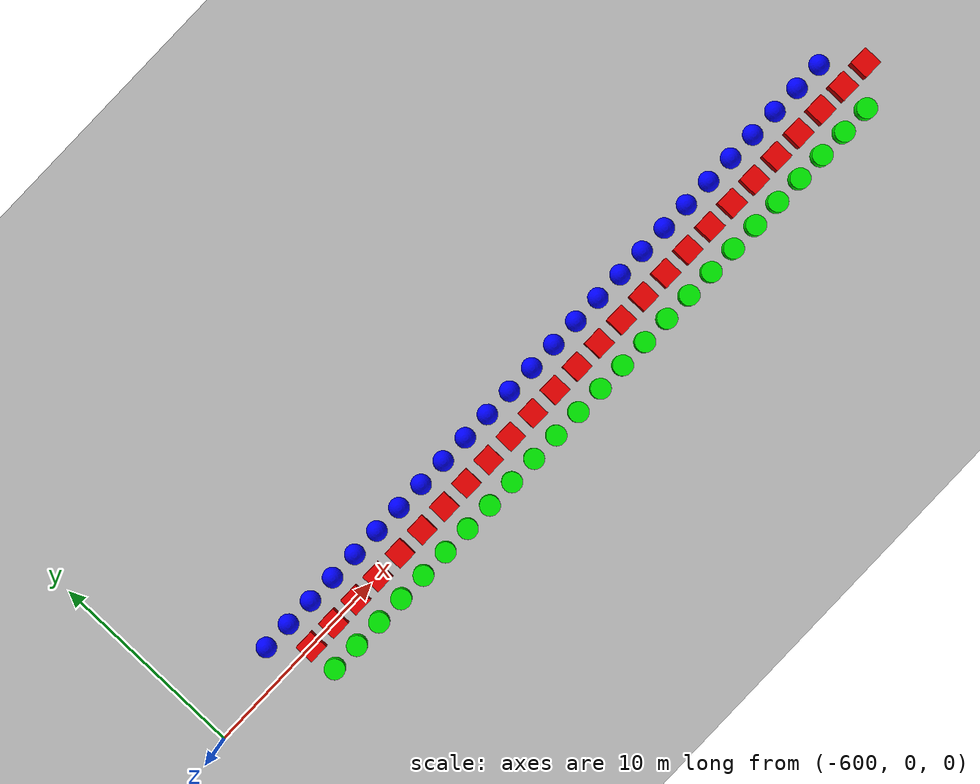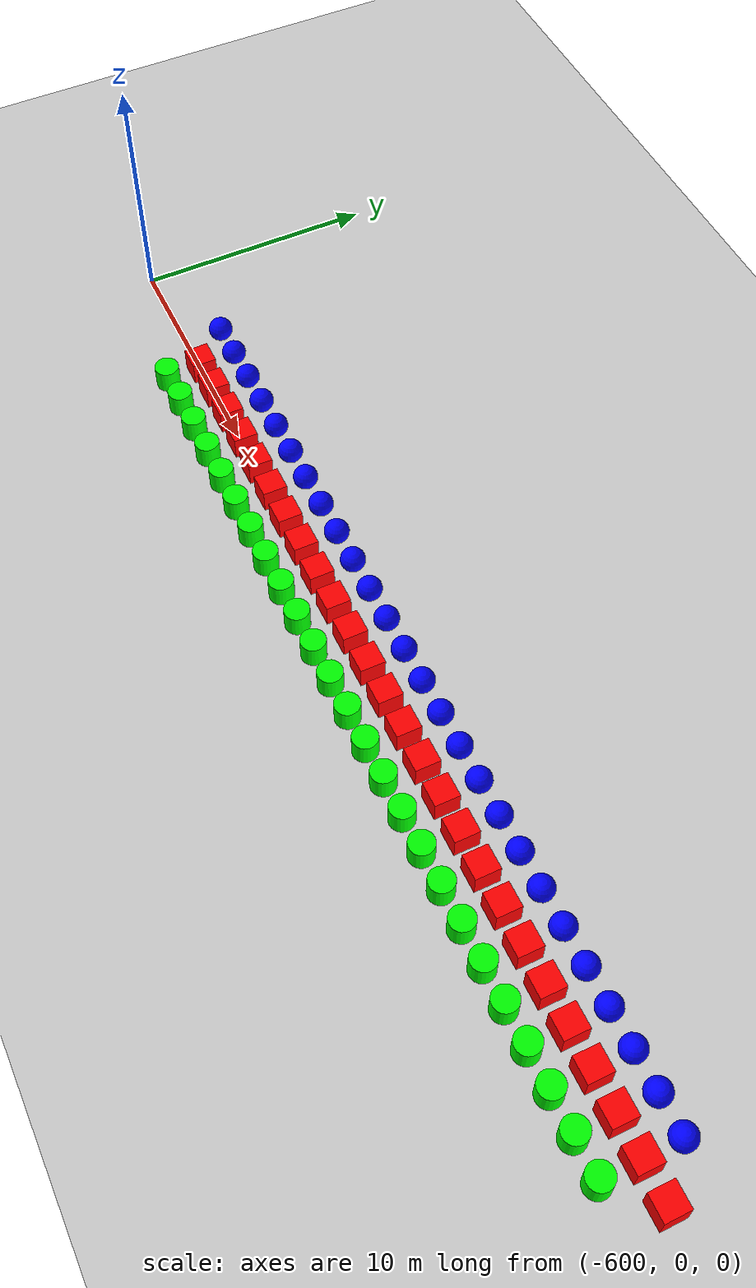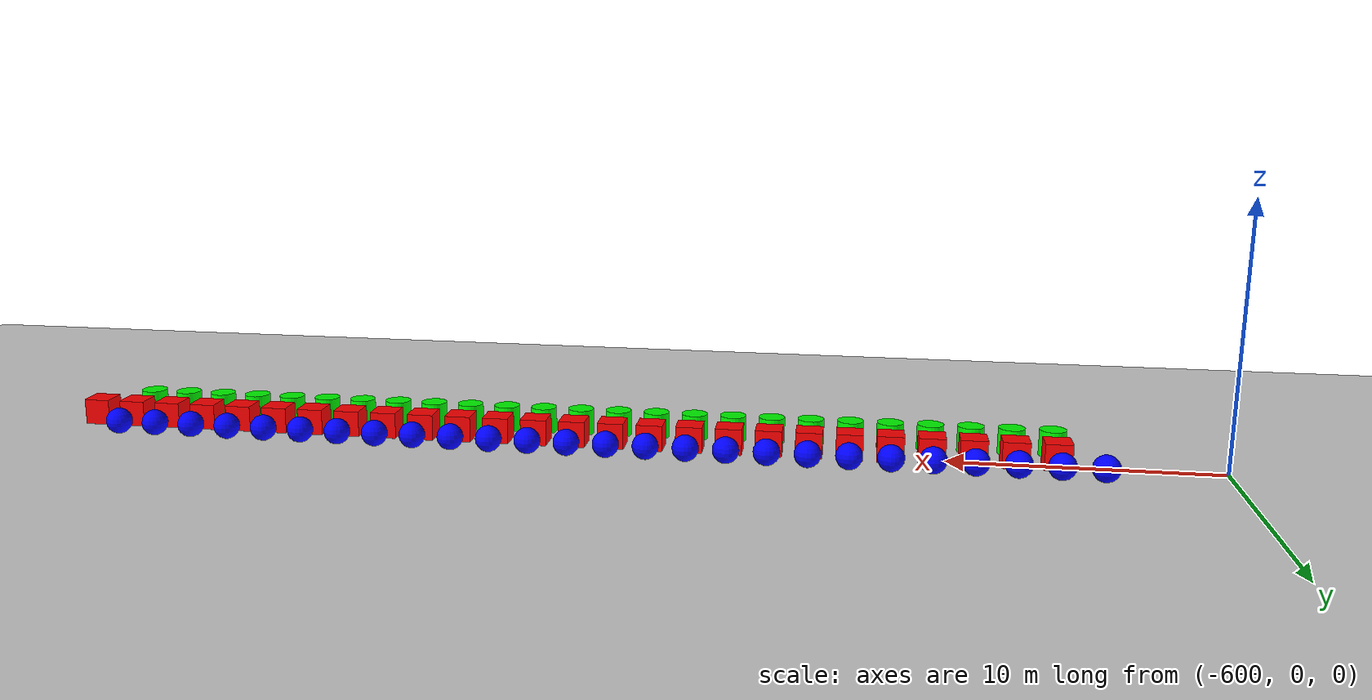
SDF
<sdf version="1.6">
 <world name="shapes">
  <model name="ground_plane">
   <static>true</static>
   <link name="link">
    <collision name="collision">
     <geometry><plane><normal>0 0 1</normal><size>100 100</size></plane></geometry>
    </collision>
    <visual name="visual">
     <geometry><plane><normal>0 0 1</normal><size>100 100</size></plane></geometry>
     <material>
      <ambient>0.8 0.8 0.8 1</ambient>
      <diffuse>0.8 0.8 0.8 1</diffuse>
      <specular>0.8 0.8 0.8 1</specular>
     </material>
    </visual>
   </link>
  </model>
  <model name="sphere_103">
   <static>false</static>
   <pose>-595.5 1.5 0.5 0 0 0</pose>
   <link name="sphere_link">
    <inertial>
     <inertia><ixx>3</ixx><ixy>0</ixy><ixz>0</ixz><iyy>3</iyy><iyz>0</iyz><izz>3</izz></inertia>
     <mass>3.0</mass>
    </inertial>
    <collision name="sphere_collision"><geometry><sphere><radius>0.5</radius></sphere></geometry></collision>
    <visual name="sphere_visual">
     <geometry><sphere><radius>0.5</radius></sphere></geometry>
     <material><ambient>0 0 1 1</ambient><diffuse>0 0 1 1</diffuse><specular>0 0 1 1</specular></material>
    </visual>
   </link>
  </model>
  <model name="box_104">
   <static>false</static>
   <pose>-594.0 0 0.5 0 0 0</pose>
   <link name="box_link">
    <inertial>
     <inertia><ixx>1</ixx><ixy>0</ixy><ixz>0</ixz><iyy>1</iyy><iyz>0</iyz><izz>1</izz></inertia>
     <mass>1.0</mass>
    </inertial>
    <collision name="box_collision"><geometry><box><size>1 1 1</size></box></geometry></collision>
    <visual name="box_visual">
     <geometry><box><size>1 1 1</size></box></geometry>
     <material><ambient>1 0 0 1</ambient><diffuse>1 0 0 1</diffuse><specular>1 0 0 1</specular></material>
    </visual>
   </link>
  </model>
  <model name="cylinder_104">
   <static>false</static>
   <pose>-594.0 -1.5 0.5 0 0 0</pose>
   <link name="cylinder_link">
    <inertial>
     <inertia><ixx>2</ixx><ixy>0</ixy><ixz>0</ixz><iyy>2</iyy><iyz>0</iyz><izz>2</izz></inertia>
     <mass>2.0</mass>
    </inertial>
    <collision name="cylinder_collision">
     <geometry><cylinder><radius>0.5</radius><length>1.0</length></cylinder></geometry>
    </collision>
    <visual name="cylinder_visual">
     <geometry><cylinder><radius>0.5</radius><length>1.0</length></cylinder></geometry>
     <material><ambient>0 1 0 1</ambient><diffuse>0 1 0 1</diffuse><specular>0 1 0 1</specular></material>
    </visual>
   </link>
  </model>
  <model name="sphere_104">
   <static>false</static>
   <pose>-594.0 1.5 0.5 0 0 0</pose>
   <link name="sphere_link">
    <inertial>
     <inertia><ixx>3</ixx><ixy>0</ixy><ixz>0</ixz><iyy>3</iyy><iyz>0</iyz><izz>3</izz></inertia>
     <mass>3.0</mass>
    </inertial>
    <collision name="sphere_collision"><geometry><sphere><radius>0.5</radius></sphere></geometry></collision>
    <visual name="sphere_visual">
     <geometry><sphere><radius>0.5</radius></sphere></geometry>
     <material><ambient>0 0 1 1</ambient><diffuse>0 0 1 1</diffuse><specular>0 0 1 1</specular></material>
    </visual>
   </link>
  </model>
  <model name="box_105">
   <static>false</static>
   <pose>-592.5 0 0.5 0 0 0</pose>
   <link name="box_link">
    <inertial>
     <inertia><ixx>1</ixx><ixy>0</ixy><ixz>0</ixz><iyy>1</iyy><iyz>0</iyz><izz>1</izz></inertia>
     <mass>1.0</mass>
    </inertial>
    <collision name="box_collision"><geometry><box><size>1 1 1</size></box></geometry></collision>
    <visual name="box_visual">
     <geometry><box><size>1 1 1</size></box></geometry>
     <material><ambient>1 0 0 1</ambient><diffuse>1 0 0 1</diffuse><specular>1 0 0 1</specular></material>
    </visual>
   </link>
  </model>
  <model name="cylinder_105">
   <static>false</static>
   <pose>-592.5 -1.5 0.5 0 0 0</pose>
   <link name="cylinder_link">
    <inertial>
     <inertia><ixx>2</ixx><ixy>0</ixy><ixz>0</ixz><iyy>2</iyy><iyz>0</iyz><izz>2</izz></inertia>
     <mass>2.0</mass>
    </inertial>
    <collision name="cylinder_collision">
     <geometry><cylinder><radius>0.5</radius><length>1.0</length></cylinder></geometry>
    </collision>
    <visual name="cylinder_visual">
     <geometry><cylinder><radius>0.5</radius><length>1.0</length></cylinder></geometry>
     <material><ambient>0 1 0 1</ambient><diffuse>0 1 0 1</diffuse><specular>0 1 0 1</specular></material>
    </visual>
   </link>
  </model>
  <model name="sphere_105">
   <static>false</static>
   <pose>-592.5 1.5 0.5 0 0 0</pose>
   <link name="sphere_link">
    <inertial>
     <inertia><ixx>3</ixx><ixy>0</ixy><ixz>0</ixz><iyy>3</iyy><iyz>0</iyz><izz>3</izz></inertia>
     <mass>3.0</mass>
    </inertial>
    <collision name="sphere_collision"><geometry><sphere><radius>0.5</radius></sphere></geometry></collision>
    <visual name="sphere_visual">
     <geometry><sphere><radius>0.5</radius></sphere></geometry>
     <material><ambient>0 0 1 1</ambient><diffuse>0 0 1 1</diffuse><specular>0 0 1 1</specular></material>
    </visual>
   </link>
  </model>
  <model name="box_106">
   <static>false</static>
   <pose>-591.0 0 0.5 0 0 0</pose>
   <link name="box_link">
    <inertial>
     <inertia><ixx>1</ixx><ixy>0</ixy><ixz>0</ixz><iyy>1</iyy><iyz>0</iyz><izz>1</izz></inertia>
     <mass>1.0</mass>
    </inertial>
    <collision name="box_collision"><geometry><box><size>1 1 1</size></box></geometry></collision>
    <visual name="box_visual">
     <geometry><box><size>1 1 1</size></box></geometry>
     <material><ambient>1 0 0 1</ambient><diffuse>1 0 0 1</diffuse><specular>1 0 0 1</specular></material>
    </visual>
   </link>
  </model>
  <model name="cylinder_106">
   <static>false</static>
   <pose>-591.0 -1.5 0.5 0 0 0</pose>
   <link name="cylinder_link">
    <inertial>
     <inertia><ixx>2</ixx><ixy>0</ixy><ixz>0</ixz><iyy>2</iyy><iyz>0</iyz><izz>2</izz></inertia>
     <mass>2.0</mass>
    </inertial>
    <collision name="cylinder_collision">
     <geometry><cylinder><radius>0.5</radius><length>1.0</length></cylinder></geometry>
    </collision>
    <visual name="cylinder_visual">
     <geometry><cylinder><radius>0.5</radius><length>1.0</length></cylinder></geometry>
     <material><ambient>0 1 0 1</ambient><diffuse>0 1 0 1</diffuse><specular>0 1 0 1</specular></material>
    </visual>
   </link>
  </model>
  <model name="sphere_106">
   <static>false</static>
   <pose>-591.0 1.5 0.5 0 0 0</pose>
   <link name="sphere_link">
    <inertial>
     <inertia><ixx>3</ixx><ixy>0</ixy><ixz>0</ixz><iyy>3</iyy><iyz>0</iyz><izz>3</izz></inertia>
     <mass>3.0</mass>
    </inertial>
    <collision name="sphere_collision"><geometry><sphere><radius>0.5</radius></sphere></geometry></collision>
    <visual name="sphere_visual">
     <geometry><sphere><radius>0.5</radius></sphere></geometry>
     <material><ambient>0 0 1 1</ambient><diffuse>0 0 1 1</diffuse><specular>0 0 1 1</specular></material>
    </visual>
   </link>
  </model>
  <model name="box_107">
   <static>false</static>
   <pose>-589.5 0 0.5 0 0 0</pose>
   <link name="box_link">
    <inertial>
     <inertia><ixx>1</ixx><ixy>0</ixy><ixz>0</ixz><iyy>1</iyy><iyz>0</iyz><izz>1</izz></inertia>
     <mass>1.0</mass>
    </inertial>
    <collision name="box_collision"><geometry><box><size>1 1 1</size></box></geometry></collision>
    <visual name="box_visual">
     <geometry><box><size>1 1 1</size></box></geometry>
     <material><ambient>1 0 0 1</ambient><diffuse>1 0 0 1</diffuse><specular>1 0 0 1</specular></material>
    </visual>
   </link>
  </model>
  <model name="cylinder_107">
   <static>false</static>
   <pose>-589.5 -1.5 0.5 0 0 0</pose>
   <link name="cylinder_link">
    <inertial>
     <inertia><ixx>2</ixx><ixy>0</ixy><ixz>0</ixz><iyy>2</iyy><iyz>0</iyz><izz>2</izz></inertia>
     <mass>2.0</mass>
    </inertial>
    <collision name="cylinder_collision">
     <geometry><cylinder><radius>0.5</radius><length>1.0</length></cylinder></geometry>
    </collision>
    <visual name="cylinder_visual">
     <geometry><cylinder><radius>0.5</radius><length>1.0</length></cylinder></geometry>
     <material><ambient>0 1 0 1</ambient><diffuse>0 1 0 1</diffuse><specular>0 1 0 1</specular></material>
    </visual>
   </link>
  </model>
  <model name="sphere_107">
   <static>false</static>
   <pose>-589.5 1.5 0.5 0 0 0</pose>
   <link name="sphere_link">
    <inertial>
     <inertia><ixx>3</ixx><ixy>0</ixy><ixz>0</ixz><iyy>3</iyy><iyz>0</iyz><izz>3</izz></inertia>
     <mass>3.0</mass>
    </inertial>
    <collision name="sphere_collision"><geometry><sphere><radius>0.5</radius></sphere></geometry></collision>
    <visual name="sphere_visual">
     <geometry><sphere><radius>0.5</radius></sphere></geometry>
     <material><ambient>0 0 1 1</ambient><diffuse>0 0 1 1</diffuse><specular>0 0 1 1</specular></material>
    </visual>
   </link>
  </model>
  <model name="box_108">
   <static>false</static>
   <pose>-588.0 0 0.5 0 0 0</pose>
   <link name="box_link">
    <inertial>
     <inertia><ixx>1</ixx><ixy>0</ixy><ixz>0</ixz><iyy>1</iyy><iyz>0</iyz><izz>1</izz></inertia>
     <mass>1.0</mass>
    </inertial>
    <collision name="box_collision"><geometry><box><size>1 1 1</size></box></geometry></collision>
    <visual name="box_visual">
     <geometry><box><size>1 1 1</size></box></geometry>
     <material><ambient>1 0 0 1</ambient><diffuse>1 0 0 1</diffuse><specular>1 0 0 1</specular></material>
    </visual>
   </link>
  </model>
  <model name="cylinder_108">
   <static>false</static>
   <pose>-588.0 -1.5 0.5 0 0 0</pose>
   <link name="cylinder_link">
    <inertial>
     <inertia><ixx>2</ixx><ixy>0</ixy><ixz>0</ixz><iyy>2</iyy><iyz>0</iyz><izz>2</izz></inertia>
     <mass>2.0</mass>
    </inertial>
    <collision name="cylinder_collision">
     <geometry><cylinder><radius>0.5</radius><length>1.0</length></cylinder></geometry>
    </collision>
    <visual name="cylinder_visual">
     <geometry><cylinder><radius>0.5</radius><length>1.0</length></cylinder></geometry>
     <material><ambient>0 1 0 1</ambient><diffuse>0 1 0 1</diffuse><specular>0 1 0 1</specular></material>
    </visual>
   </link>
  </model>
  <model name="sphere_108">
   <static>false</static>
   <pose>-588.0 1.5 0.5 0 0 0</pose>
   <link name="sphere_link">
    <inertial>
     <inertia><ixx>3</ixx><ixy>0</ixy><ixz>0</ixz><iyy>3</iyy><iyz>0</iyz><izz>3</izz></inertia>
     <mass>3.0</mass>
    </inertial>
    <collision name="sphere_collision"><geometry><sphere><radius>0.5</radius></sphere></geometry></collision>
    <visual name="sphere_visual">
     <geometry><sphere><radius>0.5</radius></sphere></geometry>
     <material><ambient>0 0 1 1</ambient><diffuse>0 0 1 1</diffuse><specular>0 0 1 1</specular></material>
    </visual>
   </link>
  </model>
  <model name="box_109">
   <static>false</static>
   <pose>-586.5 0 0.5 0 0 0</pose>
   <link name="box_link">
    <inertial>
     <inertia><ixx>1</ixx><ixy>0</ixy><ixz>0</ixz><iyy>1</iyy><iyz>0</iyz><izz>1</izz></inertia>
     <mass>1.0</mass>
    </inertial>
    <collision name="box_collision"><geometry><box><size>1 1 1</size></box></geometry></collision>
    <visual name="box_visual">
     <geometry><box><size>1 1 1</size></box></geometry>
     <material><ambient>1 0 0 1</ambient><diffuse>1 0 0 1</diffuse><specular>1 0 0 1</specular></material>
    </visual>
   </link>
  </model>
  <model name="cylinder_109">
   <static>false</static>
   <pose>-586.5 -1.5 0.5 0 0 0</pose>
   <link name="cylinder_link">
    <inertial>
     <inertia><ixx>2</ixx><ixy>0</ixy><ixz>0</ixz><iyy>2</iyy><iyz>0</iyz><izz>2</izz></inertia>
     <mass>2.0</mass>
    </inertial>
    <collision name="cylinder_collision">
     <geometry><cylinder><radius>0.5</radius><length>1.0</length></cylinder></geometry>
    </collision>
    <visual name="cylinder_visual">
     <geometry><cylinder><radius>0.5</radius><length>1.0</length></cylinder></geometry>
     <material><ambient>0 1 0 1</ambient><diffuse>0 1 0 1</diffuse><specular>0 1 0 1</specular></material>
    </visual>
   </link>
  </model>
  <model name="sphere_109">
   <static>false</static>
   <pose>-586.5 1.5 0.5 0 0 0</pose>
   <link name="sphere_link">
    <inertial>
     <inertia><ixx>3</ixx><ixy>0</ixy><ixz>0</ixz><iyy>3</iyy><iyz>0</iyz><izz>3</izz></inertia>
     <mass>3.0</mass>
    </inertial>
    <collision name="sphere_collision"><geometry><sphere><radius>0.5</radius></sphere></geometry></collision>
    <visual name="sphere_visual">
     <geometry><sphere><radius>0.5</radius></sphere></geometry>
     <material><ambient>0 0 1 1</ambient><diffuse>0 0 1 1</diffuse><specular>0 0 1 1</specular></material>
    </visual>
   </link>
  </model>
  <model name="box_110">
   <static>false</static>
   <pose>-585.0 0 0.5 0 0 0</pose>
   <link name="box_link">
    <inertial>
     <inertia><ixx>1</ixx><ixy>0</ixy><ixz>0</ixz><iyy>1</iyy><iyz>0</iyz><izz>1</izz></inertia>
     <mass>1.0</mass>
    </inertial>
    <collision name="box_collision"><geometry><box><size>1 1 1</size></box></geometry></collision>
    <visual name="box_visual">
     <geometry><box><size>1 1 1</size></box></geometry>
     <material><ambient>1 0 0 1</ambient><diffuse>1 0 0 1</diffuse><specular>1 0 0 1</specular></material>
    </visual>
   </link>
  </model>
  <model name="cylinder_110">
   <static>false</static>
   <pose>-585.0 -1.5 0.5 0 0 0</pose>
   <link name="cylinder_link">
    <inertial>
     <inertia><ixx>2</ixx><ixy>0</ixy><ixz>0</ixz><iyy>2</iyy><iyz>0</iyz><izz>2</izz></inertia>
     <mass>2.0</mass>
    </inertial>
    <collision name="cylinder_collision">
     <geometry><cylinder><radius>0.5</radius><length>1.0</length></cylinder></geometry>
    </collision>
    <visual name="cylinder_visual">
     <geometry><cylinder><radius>0.5</radius><length>1.0</length></cylinder></geometry>
     <material><ambient>0 1 0 1</ambient><diffuse>0 1 0 1</diffuse><specular>0 1 0 1</specular></material>
    </visual>
   </link>
  </model>
  <model name="sphere_110">
   <static>false</static>
   <pose>-585.0 1.5 0.5 0 0 0</pose>
   <link name="sphere_link">
    <inertial>
     <inertia><ixx>3</ixx><ixy>0</ixy><ixz>0</ixz><iyy>3</iyy><iyz>0</iyz><izz>3</izz></inertia>
     <mass>3.0</mass>
    </inertial>
    <collision name="sphere_collision"><geometry><sphere><radius>0.5</radius></sphere></geometry></collision>
    <visual name="sphere_visual">
     <geometry><sphere><radius>0.5</radius></sphere></geometry>
     <material><ambient>0 0 1 1</ambient><diffuse>0 0 1 1</diffuse><specular>0 0 1 1</specular></material>
    </visual>
   </link>
  </model>
  <model name="box_111">
   <static>false</static>
   <pose>-583.5 0 0.5 0 0 0</pose>
   <link name="box_link">
    <inertial>
     <inertia><ixx>1</ixx><ixy>0</ixy><ixz>0</ixz><iyy>1</iyy><iyz>0</iyz><izz>1</izz></inertia>
     <mass>1.0</mass>
    </inertial>
    <collision name="box_collision"><geometry><box><size>1 1 1</size></box></geometry></collision>
    <visual name="box_visual">
     <geometry><box><size>1 1 1</size></box></geometry>
     <material><ambient>1 0 0 1</ambient><diffuse>1 0 0 1</diffuse><specular>1 0 0 1</specular></material>
    </visual>
   </link>
  </model>
  <model name="cylinder_111">
   <static>false</static>
   <pose>-583.5 -1.5 0.5 0 0 0</pose>
   <link name="cylinder_link">
    <inertial>
     <inertia><ixx>2</ixx><ixy>0</ixy><ixz>0</ixz><iyy>2</iyy><iyz>0</iyz><izz>2</izz></inertia>
     <mass>2.0</mass>
    </inertial>
    <collision name="cylinder_collision">
     <geometry><cylinder><radius>0.5</radius><length>1.0</length></cylinder></geometry>
    </collision>
    <visual name="cylinder_visual">
     <geometry><cylinder><radius>0.5</radius><length>1.0</length></cylinder></geometry>
     <material><ambient>0 1 0 1</ambient><diffuse>0 1 0 1</diffuse><specular>0 1 0 1</specular></material>
    </visual>
   </link>
  </model>
  <model name="sphere_111">
   <static>false</static>
   <pose>-583.5 1.5 0.5 0 0 0</pose>
   <link name="sphere_link">
    <inertial>
     <inertia><ixx>3</ixx><ixy>0</ixy><ixz>0</ixz><iyy>3</iyy><iyz>0</iyz><izz>3</izz></inertia>
     <mass>3.0</mass>
    </inertial>
    <collision name="sphere_collision"><geometry><sphere><radius>0.5</radius></sphere></geometry></collision>
    <visual name="sphere_visual">
     <geometry><sphere><radius>0.5</radius></sphere></geometry>
     <material><ambient>0 0 1 1</ambient><diffuse>0 0 1 1</diffuse><specular>0 0 1 1</specular></material>
    </visual>
   </link>
  </model>
  <model name="box_112">
   <static>false</static>
   <pose>-582.0 0 0.5 0 0 0</pose>
   <link name="box_link">
    <inertial>
     <inertia><ixx>1</ixx><ixy>0</ixy><ixz>0</ixz><iyy>1</iyy><iyz>0</iyz><izz>1</izz></inertia>
     <mass>1.0</mass>
    </inertial>
    <collision name="box_collision"><geometry><box><size>1 1 1</size></box></geometry></collision>
    <visual name="box_visual">
     <geometry><box><size>1 1 1</size></box></geometry>
     <material><ambient>1 0 0 1</ambient><diffuse>1 0 0 1</diffuse><specular>1 0 0 1</specular></material>
    </visual>
   </link>
  </model>
  <model name="cylinder_112">
   <static>false</static>
   <pose>-582.0 -1.5 0.5 0 0 0</pose>
   <link name="cylinder_link">
    <inertial>
     <inertia><ixx>2</ixx><ixy>0</ixy><ixz>0</ixz><iyy>2</iyy><iyz>0</iyz><izz>2</izz></inertia>
     <mass>2.0</mass>
    </inertial>
    <collision name="cylinder_collision">
     <geometry><cylinder><radius>0.5</radius><length>1.0</length></cylinder></geometry>
    </collision>
    <visual name="cylinder_visual">
     <geometry><cylinder><radius>0.5</radius><length>1.0</length></cylinder></geometry>
     <material><ambient>0 1 0 1</ambient><diffuse>0 1 0 1</diffuse><specular>0 1 0 1</specular></material>
    </visual>
   </link>
  </model>
  <model name="sphere_112">
   <static>false</static>
   <pose>-582.0 1.5 0.5 0 0 0</pose>
   <link name="sphere_link">
    <inertial>
     <inertia><ixx>3</ixx><ixy>0</ixy><ixz>0</ixz><iyy>3</iyy><iyz>0</iyz><izz>3</izz></inertia>
     <mass>3.0</mass>
    </inertial>
    <collision name="sphere_collision"><geometry><sphere><radius>0.5</radius></sphere></geometry></collision>
    <visual name="sphere_visual">
     <geometry><sphere><radius>0.5</radius></sphere></geometry>
     <material><ambient>0 0 1 1</ambient><diffuse>0 0 1 1</diffuse><specular>0 0 1 1</specular></material>
    </visual>
   </link>
  </model>
  <model name="box_113">
   <static>false</static>
   <pose>-580.5 0 0.5 0 0 0</pose>
   <link name="box_link">
    <inertial>
     <inertia><ixx>1</ixx><ixy>0</ixy><ixz>0</ixz><iyy>1</iyy><iyz>0</iyz><izz>1</izz></inertia>
     <mass>1.0</mass>
    </inertial>
    <collision name="box_collision"><geometry><box><size>1 1 1</size></box></geometry></collision>
    <visual name="box_visual">
     <geometry><box><size>1 1 1</size></box></geometry>
     <material><ambient>1 0 0 1</ambient><diffuse>1 0 0 1</diffuse><specular>1 0 0 1</specular></material>
    </visual>
   </link>
  </model>
  <model name="cylinder_113">
   <static>false</static>
   <pose>-580.5 -1.5 0.5 0 0 0</pose>
   <link name="cylinder_link">
    <inertial>
     <inertia><ixx>2</ixx><ixy>0</ixy><ixz>0</ixz><iyy>2</iyy><iyz>0</iyz><izz>2</izz></inertia>
     <mass>2.0</mass>
    </inertial>
    <collision name="cylinder_collision">
     <geometry><cylinder><radius>0.5</radius><length>1.0</length></cylinder></geometry>
    </collision>
    <visual name="cylinder_visual">
     <geometry><cylinder><radius>0.5</radius><length>1.0</length></cylinder></geometry>
     <material><ambient>0 1 0 1</ambient><diffuse>0 1 0 1</diffuse><specular>0 1 0 1</specular></material>
    </visual>
   </link>
  </model>
  <model name="sphere_113">
   <static>false</static>
   <pose>-580.5 1.5 0.5 0 0 0</pose>
   <link name="sphere_link">
    <inertial>
     <inertia><ixx>3</ixx><ixy>0</ixy><ixz>0</ixz><iyy>3</iyy><iyz>0</iyz><izz>3</izz></inertia>
     <mass>3.0</mass>
    </inertial>
    <collision name="sphere_collision"><geometry><sphere><radius>0.5</radius></sphere></geometry></collision>
    <visual name="sphere_visual">
     <geometry><sphere><radius>0.5</radius></sphere></geometry>
     <material><ambient>0 0 1 1</ambient><diffuse>0 0 1 1</diffuse><specular>0 0 1 1</specular></material>
    </visual>
   </link>
  </model>
  <model name="box_114">
   <static>false</static>
   <pose>-579.0 0 0.5 0 0 0</pose>
   <link name="box_link">
    <inertial>
     <inertia><ixx>1</ixx><ixy>0</ixy><ixz>0</ixz><iyy>1</iyy><iyz>0</iyz><izz>1</izz></inertia>
     <mass>1.0</mass>
    </inertial>
    <collision name="box_collision"><geometry><box><size>1 1 1</size></box></geometry></collision>
    <visual name="box_visual">
     <geometry><box><size>1 1 1</size></box></geometry>
     <material><ambient>1 0 0 1</ambient><diffuse>1 0 0 1</diffuse><specular>1 0 0 1</specular></material>
    </visual>
   </link>
  </model>
  <model name="cylinder_114">
   <static>false</static>
   <pose>-579.0 -1.5 0.5 0 0 0</pose>
   <link name="cylinder_link">
    <inertial>
     <inertia><ixx>2</ixx><ixy>0</ixy><ixz>0</ixz><iyy>2</iyy><iyz>0</iyz><izz>2</izz></inertia>
     <mass>2.0</mass>
    </inertial>
    <collision name="cylinder_collision">
     <geometry><cylinder><radius>0.5</radius><length>1.0</length></cylinder></geometry>
    </collision>
    <visual name="cylinder_visual">
     <geometry><cylinder><radius>0.5</radius><length>1.0</length></cylinder></geometry>
     <material><ambient>0 1 0 1</ambient><diffuse>0 1 0 1</diffuse><specular>0 1 0 1</specular></material>
    </visual>
   </link>
  </model>
  <model name="sphere_114">
   <static>false</static>
   <pose>-579.0 1.5 0.5 0 0 0</pose>
   <link name="sphere_link">
    <inertial>
     <inertia><ixx>3</ixx><ixy>0</ixy><ixz>0</ixz><iyy>3</iyy><iyz>0</iyz><izz>3</izz></inertia>
     <mass>3.0</mass>
    </inertial>
    <collision name="sphere_collision"><geometry><sphere><radius>0.5</radius></sphere></geometry></collision>
    <visual name="sphere_visual">
     <geometry><sphere><radius>0.5</radius></sphere></geometry>
     <material><ambient>0 0 1 1</ambient><diffuse>0 0 1 1</diffuse><specular>0 0 1 1</specular></material>
    </visual>
   </link>
  </model>
  <model name="box_115">
   <static>false</static>
   <pose>-577.5 0 0.5 0 0 0</pose>
   <link name="box_link">
    <inertial>
     <inertia><ixx>1</ixx><ixy>0</ixy><ixz>0</ixz><iyy>1</iyy><iyz>0</iyz><izz>1</izz></inertia>
     <mass>1.0</mass>
    </inertial>
    <collision name="box_collision"><geometry><box><size>1 1 1</size></box></geometry></collision>
    <visual name="box_visual">
     <geometry><box><size>1 1 1</size></box></geometry>
     <material><ambient>1 0 0 1</ambient><diffuse>1 0 0 1</diffuse><specular>1 0 0 1</specular></material>
    </visual>
   </link>
  </model>
  <model name="cylinder_115">
   <static>false</static>
   <pose>-577.5 -1.5 0.5 0 0 0</pose>
   <link name="cylinder_link">
    <inertial>
     <inertia><ixx>2</ixx><ixy>0</ixy><ixz>0</ixz><iyy>2</iyy><iyz>0</iyz><izz>2</izz></inertia>
     <mass>2.0</mass>
    </inertial>
    <collision name="cylinder_collision">
     <geometry><cylinder><radius>0.5</radius><length>1.0</length></cylinder></geometry>
    </collision>
    <visual name="cylinder_visual">
     <geometry><cylinder><radius>0.5</radius><length>1.0</length></cylinder></geometry>
     <material><ambient>0 1 0 1</ambient><diffuse>0 1 0 1</diffuse><specular>0 1 0 1</specular></material>
    </visual>
   </link>
  </model>
  <model name="sphere_115">
   <static>false</static>
   <pose>-577.5 1.5 0.5 0 0 0</pose>
   <link name="sphere_link">
    <inertial>
     <inertia><ixx>3</ixx><ixy>0</ixy><ixz>0</ixz><iyy>3</iyy><iyz>0</iyz><izz>3</izz></inertia>
     <mass>3.0</mass>
    </inertial>
    <collision name="sphere_collision"><geometry><sphere><radius>0.5</radius></sphere></geometry></collision>
    <visual name="sphere_visual">
     <geometry><sphere><radius>0.5</radius></sphere></geometry>
     <material><ambient>0 0 1 1</ambient><diffuse>0 0 1 1</diffuse><specular>0 0 1 1</specular></material>
    </visual>
   </link>
  </model>
  <model name="box_116">
   <static>false</static>
   <pose>-576.0 0 0.5 0 0 0</pose>
   <link name="box_link">
    <inertial>
     <inertia><ixx>1</ixx><ixy>0</ixy><ixz>0</ixz><iyy>1</iyy><iyz>0</iyz><izz>1</izz></inertia>
     <mass>1.0</mass>
    </inertial>
    <collision name="box_collision"><geometry><box><size>1 1 1</size></box></geometry></collision>
    <visual name="box_visual">
     <geometry><box><size>1 1 1</size></box></geometry>
     <material><ambient>1 0 0 1</ambient><diffuse>1 0 0 1</diffuse><specular>1 0 0 1</specular></material>
    </visual>
   </link>
  </model>
  <model name="cylinder_116">
   <static>false</static>
   <pose>-576.0 -1.5 0.5 0 0 0</pose>
   <link name="cylinder_link">
    <inertial>
     <inertia><ixx>2</ixx><ixy>0</ixy><ixz>0</ixz><iyy>2</iyy><iyz>0</iyz><izz>2</izz></inertia>
     <mass>2.0</mass>
    </inertial>
    <collision name="cylinder_collision">
     <geometry><cylinder><radius>0.5</radius><length>1.0</length></cylinder></geometry>
    </collision>
    <visual name="cylinder_visual">
     <geometry><cylinder><radius>0.5</radius><length>1.0</length></cylinder></geometry>
     <material><ambient>0 1 0 1</ambient><diffuse>0 1 0 1</diffuse><specular>0 1 0 1</specular></material>
    </visual>
   </link>
  </model>
  <model name="sphere_116">
   <static>false</static>
   <pose>-576.0 1.5 0.5 0 0 0</pose>
   <link name="sphere_link">
    <inertial>
     <inertia><ixx>3</ixx><ixy>0</ixy><ixz>0</ixz><iyy>3</iyy><iyz>0</iyz><izz>3</izz></inertia>
     <mass>3.0</mass>
    </inertial>
    <collision name="sphere_collision"><geometry><sphere><radius>0.5</radius></sphere></geometry></collision>
    <visual name="sphere_visual">
     <geometry><sphere><radius>0.5</radius></sphere></geometry>
     <material><ambient>0 0 1 1</ambient><diffuse>0 0 1 1</diffuse><specular>0 0 1 1</specular></material>
    </visual>
   </link>
  </model>
  <model name="box_117">
   <static>false</static>
   <pose>-574.5 0 0.5 0 0 0</pose>
   <link name="box_link">
    <inertial>
     <inertia><ixx>1</ixx><ixy>0</ixy><ixz>0</ixz><iyy>1</iyy><iyz>0</iyz><izz>1</izz></inertia>
     <mass>1.0</mass>
    </inertial>
    <collision name="box_collision"><geometry><box><size>1 1 1</size></box></geometry></collision>
    <visual name="box_visual">
     <geometry><box><size>1 1 1</size></box></geometry>
     <material><ambient>1 0 0 1</ambient><diffuse>1 0 0 1</diffuse><specular>1 0 0 1</specular></material>
    </visual>
   </link>
  </model>
  <model name="cylinder_117">
   <static>false</static>
   <pose>-574.5 -1.5 0.5 0 0 0</pose>
   <link name="cylinder_link">
    <inertial>
     <inertia><ixx>2</ixx><ixy>0</ixy><ixz>0</ixz><iyy>2</iyy><iyz>0</iyz><izz>2</izz></inertia>
     <mass>2.0</mass>
    </inertial>
    <collision name="cylinder_collision">
     <geometry><cylinder><radius>0.5</radius><length>1.0</length></cylinder></geometry>
    </collision>
    <visual name="cylinder_visual">
     <geometry><cylinder><radius>0.5</radius><length>1.0</length></cylinder></geometry>
     <material><ambient>0 1 0 1</ambient><diffuse>0 1 0 1</diffuse><specular>0 1 0 1</specular></material>
    </visual>
   </link>
  </model>
  <model name="sphere_117">
   <static>false</static>
   <pose>-574.5 1.5 0.5 0 0 0</pose>
   <link name="sphere_link">
    <inertial>
     <inertia><ixx>3</ixx><ixy>0</ixy><ixz>0</ixz><iyy>3</iyy><iyz>0</iyz><izz>3</izz></inertia>
     <mass>3.0</mass>
    </inertial>
    <collision name="sphere_collision"><geometry><sphere><radius>0.5</radius></sphere></geometry></collision>
    <visual name="sphere_visual">
     <geometry><sphere><radius>0.5</radius></sphere></geometry>
     <material><ambient>0 0 1 1</ambient><diffuse>0 0 1 1</diffuse><specular>0 0 1 1</specular></material>
    </visual>
   </link>
  </model>
  <model name="box_118">
   <static>false</static>
   <pose>-573.0 0 0.5 0 0 0</pose>
   <link name="box_link">
    <inertial>
     <inertia><ixx>1</ixx><ixy>0</ixy><ixz>0</ixz><iyy>1</iyy><iyz>0</iyz><izz>1</izz></inertia>
     <mass>1.0</mass>
    </inertial>
    <collision name="box_collision"><geometry><box><size>1 1 1</size></box></geometry></collision>
    <visual name="box_visual">
     <geometry><box><size>1 1 1</size></box></geometry>
     <material><ambient>1 0 0 1</ambient><diffuse>1 0 0 1</diffuse><specular>1 0 0 1</specular></material>
    </visual>
   </link>
  </model>
  <model name="cylinder_118">
   <static>false</static>
   <pose>-573.0 -1.5 0.5 0 0 0</pose>
   <link name="cylinder_link">
    <inertial>
     <inertia><ixx>2</ixx><ixy>0</ixy><ixz>0</ixz><iyy>2</iyy><iyz>0</iyz><izz>2</izz></inertia>
     <mass>2.0</mass>
    </inertial>
    <collision name="cylinder_collision">
     <geometry><cylinder><radius>0.5</radius><length>1.0</length></cylinder></geometry>
    </collision>
    <visual name="cylinder_visual">
     <geometry><cylinder><radius>0.5</radius><length>1.0</length></cylinder></geometry>
     <material><ambient>0 1 0 1</ambient><diffuse>0 1 0 1</diffuse><specular>0 1 0 1</specular></material>
    </visual>
   </link>
  </model>
  <model name="sphere_118">
   <static>false</static>
   <pose>-573.0 1.5 0.5 0 0 0</pose>
   <link name="sphere_link">
    <inertial>
     <inertia><ixx>3</ixx><ixy>0</ixy><ixz>0</ixz><iyy>3</iyy><iyz>0</iyz><izz>3</izz></inertia>
     <mass>3.0</mass>
    </inertial>
    <collision name="sphere_collision"><geometry><sphere><radius>0.5</radius></sphere></geometry></collision>
    <visual name="sphere_visual">
     <geometry><sphere><radius>0.5</radius></sphere></geometry>
     <material><ambient>0 0 1 1</ambient><diffuse>0 0 1 1</diffuse><specular>0 0 1 1</specular></material>
    </visual>
   </link>
  </model>
  <model name="box_119">
   <static>false</static>
   <pose>-571.5 0 0.5 0 0 0</pose>
   <link name="box_link">
    <inertial>
     <inertia><ixx>1</ixx><ixy>0</ixy><ixz>0</ixz><iyy>1</iyy><iyz>0</iyz><izz>1</izz></inertia>
     <mass>1.0</mass>
    </inertial>
    <collision name="box_collision"><geometry><box><size>1 1 1</size></box></geometry></collision>
    <visual name="box_visual">
     <geometry><box><size>1 1 1</size></box></geometry>
     <material><ambient>1 0 0 1</ambient><diffuse>1 0 0 1</diffuse><specular>1 0 0 1</specular></material>
    </visual>
   </link>
  </model>
  <model name="cylinder_119">
   <static>false</static>
   <pose>-571.5 -1.5 0.5 0 0 0</pose>
   <link name="cylinder_link">
    <inertial>
     <inertia><ixx>2</ixx><ixy>0</ixy><ixz>0</ixz><iyy>2</iyy><iyz>0</iyz><izz>2</izz></inertia>
     <mass>2.0</mass>
    </inertial>
    <collision name="cylinder_collision">
     <geometry><cylinder><radius>0.5</radius><length>1.0</length></cylinder></geometry>
    </collision>
    <visual name="cylinder_visual">
     <geometry><cylinder><radius>0.5</radius><length>1.0</length></cylinder></geometry>
     <material><ambient>0 1 0 1</ambient><diffuse>0 1 0 1</diffuse><specular>0 1 0 1</specular></material>
    </visual>
   </link>
  </model>
  <model name="sphere_119">
   <static>false</static>
   <pose>-571.5 1.5 0.5 0 0 0</pose>
   <link name="sphere_link">
    <inertial>
     <inertia><ixx>3</ixx><ixy>0</ixy><ixz>0</ixz><iyy>3</iyy><iyz>0</iyz><izz>3</izz></inertia>
     <mass>3.0</mass>
    </inertial>
    <collision name="sphere_collision"><geometry><sphere><radius>0.5</radius></sphere></geometry></collision>
    <visual name="sphere_visual">
     <geometry><sphere><radius>0.5</radius></sphere></geometry>
     <material><ambient>0 0 1 1</ambient><diffuse>0 0 1 1</diffuse><specular>0 0 1 1</specular></material>
    </visual>
   </link>
  </model>
  <model name="box_120">
   <static>false</static>
   <pose>-570.0 0 0.5 0 0 0</pose>
   <link name="box_link">
    <inertial>
     <inertia><ixx>1</ixx><ixy>0</ixy><ixz>0</ixz><iyy>1</iyy><iyz>0</iyz><izz>1</izz></inertia>
     <mass>1.0</mass>
    </inertial>
    <collision name="box_collision"><geometry><box><size>1 1 1</size></box></geometry></collision>
    <visual name="box_visual">
     <geometry><box><size>1 1 1</size></box></geometry>
     <material><ambient>1 0 0 1</ambient><diffuse>1 0 0 1</diffuse><specular>1 0 0 1</specular></material>
    </visual>
   </link>
  </model>
  <model name="cylinder_120">
   <static>false</static>
   <pose>-570.0 -1.5 0.5 0 0 0</pose>
   <link name="cylinder_link">
    <inertial>
     <inertia><ixx>2</ixx><ixy>0</ixy><ixz>0</ixz><iyy>2</iyy><iyz>0</iyz><izz>2</izz></inertia>
     <mass>2.0</mass>
    </inertial>
    <collision name="cylinder_collision">
     <geometry><cylinder><radius>0.5</radius><length>1.0</length></cylinder></geometry>
    </collision>
    <visual name="cylinder_visual">
     <geometry><cylinder><radius>0.5</radius><length>1.0</length></cylinder></geometry>
     <material><ambient>0 1 0 1</ambient><diffuse>0 1 0 1</diffuse><specular>0 1 0 1</specular></material>
    </visual>
   </link>
  </model>
  <model name="sphere_120">
   <static>false</static>
   <pose>-570.0 1.5 0.5 0 0 0</pose>
   <link name="sphere_link">
    <inertial>
     <inertia><ixx>3</ixx><ixy>0</ixy><ixz>0</ixz><iyy>3</iyy><iyz>0</iyz><izz>3</izz></inertia>
     <mass>3.0</mass>
    </inertial>
    <collision name="sphere_collision"><geometry><sphere><radius>0.5</radius></sphere></geometry></collision>
    <visual name="sphere_visual">
     <geometry><sphere><radius>0.5</radius></sphere></geometry>
     <material><ambient>0 0 1 1</ambient><diffuse>0 0 1 1</diffuse><specular>0 0 1 1</specular></material>
    </visual>
   </link>
  </model>
  <model name="box_121">
   <static>false</static>
   <pose>-568.5 0 0.5 0 0 0</pose>
   <link name="box_link">
    <inertial>
     <inertia><ixx>1</ixx><ixy>0</ixy><ixz>0</ixz><iyy>1</iyy><iyz>0</iyz><izz>1</izz></inertia>
     <mass>1.0</mass>
    </inertial>
    <collision name="box_collision"><geometry><box><size>1 1 1</size></box></geometry></collision>
    <visual name="box_visual">
     <geometry><box><size>1 1 1</size></box></geometry>
     <material><ambient>1 0 0 1</ambient><diffuse>1 0 0 1</diffuse><specular>1 0 0 1</specular></material>
    </visual>
   </link>
  </model>
  <model name="cylinder_121">
   <static>false</static>
   <pose>-568.5 -1.5 0.5 0 0 0</pose>
   <link name="cylinder_link">
    <inertial>
     <inertia><ixx>2</ixx><ixy>0</ixy><ixz>0</ixz><iyy>2</iyy><iyz>0</iyz><izz>2</izz></inertia>
     <mass>2.0</mass>
    </inertial>
    <collision name="cylinder_collision">
     <geometry><cylinder><radius>0.5</radius><length>1.0</length></cylinder></geometry>
    </collision>
    <visual name="cylinder_visual">
     <geometry><cylinder><radius>0.5</radius><length>1.0</length></cylinder></geometry>
     <material><ambient>0 1 0 1</ambient><diffuse>0 1 0 1</diffuse><specular>0 1 0 1</specular></material>
    </visual>
   </link>
  </model>
  <model name="sphere_121">
   <static>false</static>
   <pose>-568.5 1.5 0.5 0 0 0</pose>
   <link name="sphere_link">
    <inertial>
     <inertia><ixx>3</ixx><ixy>0</ixy><ixz>0</ixz><iyy>3</iyy><iyz>0</iyz><izz>3</izz></inertia>
     <mass>3.0</mass>
    </inertial>
    <collision name="sphere_collision"><geometry><sphere><radius>0.5</radius></sphere></geometry></collision>
    <visual name="sphere_visual">
     <geometry><sphere><radius>0.5</radius></sphere></geometry>
     <material><ambient>0 0 1 1</ambient><diffuse>0 0 1 1</diffuse><specular>0 0 1 1</specular></material>
    </visual>
   </link>
  </model>
  <model name="box_122">
   <static>false</static>
   <pose>-567.0 0 0.5 0 0 0</pose>
   <link name="box_link">
    <inertial>
     <inertia><ixx>1</ixx><ixy>0</ixy><ixz>0</ixz><iyy>1</iyy><iyz>0</iyz><izz>1</izz></inertia>
     <mass>1.0</mass>
    </inertial>
    <collision name="box_collision"><geometry><box><size>1 1 1</size></box></geometry></collision>
    <visual name="box_visual">
     <geometry><box><size>1 1 1</size></box></geometry>
     <material><ambient>1 0 0 1</ambient><diffuse>1 0 0 1</diffuse><specular>1 0 0 1</specular></material>
    </visual>
   </link>
  </model>
  <model name="cylinder_122">
   <static>false</static>
   <pose>-567.0 -1.5 0.5 0 0 0</pose>
   <link name="cylinder_link">
    <inertial>
     <inertia><ixx>2</ixx><ixy>0</ixy><ixz>0</ixz><iyy>2</iyy><iyz>0</iyz><izz>2</izz></inertia>
     <mass>2.0</mass>
    </inertial>
    <collision name="cylinder_collision">
     <geometry><cylinder><radius>0.5</radius><length>1.0</length></cylinder></geometry>
    </collision>
    <visual name="cylinder_visual">
     <geometry><cylinder><radius>0.5</radius><length>1.0</length></cylinder></geometry>
     <material><ambient>0 1 0 1</ambient><diffuse>0 1 0 1</diffuse><specular>0 1 0 1</specular></material>
    </visual>
   </link>
  </model>
  <model name="sphere_122">
   <static>false</static>
   <pose>-567.0 1.5 0.5 0 0 0</pose>
   <link name="sphere_link">
    <inertial>
     <inertia><ixx>3</ixx><ixy>0</ixy><ixz>0</ixz><iyy>3</iyy><iyz>0</iyz><izz>3</izz></inertia>
     <mass>3.0</mass>
    </inertial>
    <collision name="sphere_collision"><geometry><sphere><radius>0.5</radius></sphere></geometry></collision>
    <visual name="sphere_visual">
     <geometry><sphere><radius>0.5</radius></sphere></geometry>
     <material><ambient>0 0 1 1</ambient><diffuse>0 0 1 1</diffuse><specular>0 0 1 1</specular></material>
    </visual>
   </link>
  </model>
  <model name="box_123">
   <static>false</static>
   <pose>-565.5 0 0.5 0 0 0</pose>
   <link name="box_link">
    <inertial>
     <inertia><ixx>1</ixx><ixy>0</ixy><ixz>0</ixz><iyy>1</iyy><iyz>0</iyz><izz>1</izz></inertia>
     <mass>1.0</mass>
    </inertial>
    <collision name="box_collision"><geometry><box><size>1 1 1</size></box></geometry></collision>
    <visual name="box_visual">
     <geometry><box><size>1 1 1</size></box></geometry>
     <material><ambient>1 0 0 1</ambient><diffuse>1 0 0 1</diffuse><specular>1 0 0 1</specular></material>
    </visual>
   </link>
  </model>
  <model name="cylinder_123">
   <static>false</static>
   <pose>-565.5 -1.5 0.5 0 0 0</pose>
   <link name="cylinder_link">
    <inertial>
     <inertia><ixx>2</ixx><ixy>0</ixy><ixz>0</ixz><iyy>2</iyy><iyz>0</iyz><izz>2</izz></inertia>
     <mass>2.0</mass>
    </inertial>
    <collision name="cylinder_collision">
     <geometry><cylinder><radius>0.5</radius><length>1.0</length></cylinder></geometry>
    </collision>
    <visual name="cylinder_visual">
     <geometry><cylinder><radius>0.5</radius><length>1.0</length></cylinder></geometry>
     <material><ambient>0 1 0 1</ambient><diffuse>0 1 0 1</diffuse><specular>0 1 0 1</specular></material>
    </visual>
   </link>
  </model>
  <model name="sphere_123">
   <static>false</static>
   <pose>-565.5 1.5 0.5 0 0 0</pose>
   <link name="sphere_link">
    <inertial>
     <inertia><ixx>3</ixx><ixy>0</ixy><ixz>0</ixz><iyy>3</iyy><iyz>0</iyz><izz>3</izz></inertia>
     <mass>3.0</mass>
    </inertial>
    <collision name="sphere_collision"><geometry><sphere><radius>0.5</radius></sphere></geometry></collision>
    <visual name="sphere_visual">
     <geometry><sphere><radius>0.5</radius></sphere></geometry>
     <material><ambient>0 0 1 1</ambient><diffuse>0 0 1 1</diffuse><specular>0 0 1 1</specular></material>
    </visual>
   </link>
  </model>
  <model name="box_124">
   <static>false</static>
   <pose>-564.0 0 0.5 0 0 0</pose>
   <link name="box_link">
    <inertial>
     <inertia><ixx>1</ixx><ixy>0</ixy><ixz>0</ixz><iyy>1</iyy><iyz>0</iyz><izz>1</izz></inertia>
     <mass>1.0</mass>
    </inertial>
    <collision name="box_collision"><geometry><box><size>1 1 1</size></box></geometry></collision>
    <visual name="box_visual">
     <geometry><box><size>1 1 1</size></box></geometry>
     <material><ambient>1 0 0 1</ambient><diffuse>1 0 0 1</diffuse><specular>1 0 0 1</specular></material>
    </visual>
   </link>
  </model>
  <model name="cylinder_124">
   <static>false</static>
   <pose>-564.0 -1.5 0.5 0 0 0</pose>
   <link name="cylinder_link">
    <inertial>
     <inertia><ixx>2</ixx><ixy>0</ixy><ixz>0</ixz><iyy>2</iyy><iyz>0</iyz><izz>2</izz></inertia>
     <mass>2.0</mass>
    </inertial>
    <collision name="cylinder_collision">
     <geometry><cylinder><radius>0.5</radius><length>1.0</length></cylinder></geometry>
    </collision>
    <visual name="cylinder_visual">
     <geometry><cylinder><radius>0.5</radius><length>1.0</length></cylinder></geometry>
     <material><ambient>0 1 0 1</ambient><diffuse>0 1 0 1</diffuse><specular>0 1 0 1</specular></material>
    </visual>
   </link>
  </model>
  <model name="sphere_124">
   <static>false</static>
   <pose>-564.0 1.5 0.5 0 0 0</pose>
   <link name="sphere_link">
    <inertial>
     <inertia><ixx>3</ixx><ixy>0</ixy><ixz>0</ixz><iyy>3</iyy><iyz>0</iyz><izz>3</izz></inertia>
     <mass>3.0</mass>
    </inertial>
    <collision name="sphere_collision"><geometry><sphere><radius>0.5</radius></sphere></geometry></collision>
    <visual name="sphere_visual">
     <geometry><sphere><radius>0.5</radius></sphere></geometry>
     <material><ambient>0 0 1 1</ambient><diffuse>0 0 1 1</diffuse><specular>0 0 1 1</specular></material>
    </visual>
   </link>
  </model>
  <model name="box_125">
   <static>false</static>
   <pose>-562.5 0 0.5 0 0 0</pose>
   <link name="box_link">
    <inertial>
     <inertia><ixx>1</ixx><ixy>0</ixy><ixz>0</ixz><iyy>1</iyy><iyz>0</iyz><izz>1</izz></inertia>
     <mass>1.0</mass>
    </inertial>
    <collision name="box_collision"><geometry><box><size>1 1 1</size></box></geometry></collision>
    <visual name="box_visual">
     <geometry><box><size>1 1 1</size></box></geometry>
     <material><ambient>1 0 0 1</ambient><diffuse>1 0 0 1</diffuse><specular>1 0 0 1</specular></material>
    </visual>
   </link>
  </model>
  <model name="cylinder_125">
   <static>false</static>
   <pose>-562.5 -1.5 0.5 0 0 0</pose>
   <link name="cylinder_link">
    <inertial>
     <inertia><ixx>2</ixx><ixy>0</ixy><ixz>0</ixz><iyy>2</iyy><iyz>0</iyz><izz>2</izz></inertia>
     <mass>2.0</mass>
    </inertial>
    <collision name="cylinder_collision">
     <geometry><cylinder><radius>0.5</radius><length>1.0</length></cylinder></geometry>
    </collision>
    <visual name="cylinder_visual">
     <geometry><cylinder><radius>0.5</radius><length>1.0</length></cylinder></geometry>
     <material><ambient>0 1 0 1</ambient><diffuse>0 1 0 1</diffuse><specular>0 1 0 1</specular></material>
    </visual>
   </link>
  </model>
  <model name="sphere_125">
   <static>false</static>
   <pose>-562.5 1.5 0.5 0 0 0</pose>
   <link name="sphere_link">
    <inertial>
     <inertia><ixx>3</ixx><ixy>0</ixy><ixz>0</ixz><iyy>3</iyy><iyz>0</iyz><izz>3</izz></inertia>
     <mass>3.0</mass>
    </inertial>
    <collision name="sphere_collision"><geometry><sphere><radius>0.5</radius></sphere></geometry></collision>
    <visual name="sphere_visual">
     <geometry><sphere><radius>0.5</radius></sphere></geometry>
     <material><ambient>0 0 1 1</ambient><diffuse>0 0 1 1</diffuse><specular>0 0 1 1</specular></material>
    </visual>
   </link>
  </model>
  <model name="box_126">
   <static>false</static>
   <pose>-561.0 0 0.5 0 0 0</pose>
   <link name="box_link">
    <inertial>
     <inertia><ixx>1</ixx><ixy>0</ixy><ixz>0</ixz><iyy>1</iyy><iyz>0</iyz><izz>1</izz></inertia>
     <mass>1.0</mass>
    </inertial>
    <collision name="box_collision"><geometry><box><size>1 1 1</size></box></geometry></collision>
    <visual name="box_visual">
     <geometry><box><size>1 1 1</size></box></geometry>
     <material><ambient>1 0 0 1</ambient><diffuse>1 0 0 1</diffuse><specular>1 0 0 1</specular></material>
    </visual>
   </link>
  </model>
  <model name="cylinder_126">
   <static>false</static>
   <pose>-561.0 -1.5 0.5 0 0 0</pose>
   <link name="cylinder_link">
    <inertial>
     <inertia><ixx>2</ixx><ixy>0</ixy><ixz>0</ixz><iyy>2</iyy><iyz>0</iyz><izz>2</izz></inertia>
     <mass>2.0</mass>
    </inertial>
    <collision name="cylinder_collision">
     <geometry><cylinder><radius>0.5</radius><length>1.0</length></cylinder></geometry>
    </collision>
    <visual name="cylinder_visual">
     <geometry><cylinder><radius>0.5</radius><length>1.0</length></cylinder></geometry>
     <material><ambient>0 1 0 1</ambient><diffuse>0 1 0 1</diffuse><specular>0 1 0 1</specular></material>
    </visual>
   </link>
  </model>
  <model name="sphere_126">
   <static>false</static>
   <pose>-561.0 1.5 0.5 0 0 0</pose>
   <link name="sphere_link">
    <inertial>
     <inertia><ixx>3</ixx><ixy>0</ixy><ixz>0</ixz><iyy>3</iyy><iyz>0</iyz><izz>3</izz></inertia>
     <mass>3.0</mass>
    </inertial>
    <collision name="sphere_collision"><geometry><sphere><radius>0.5</radius></sphere></geometry></collision>
    <visual name="sphere_visual">
     <geometry><sphere><radius>0.5</radius></sphere></geometry>
     <material><ambient>0 0 1 1</ambient><diffuse>0 0 1 1</diffuse><specular>0 0 1 1</specular></material>
    </visual>
   </link>
  </model>
  <model name="box_127">
   <static>false</static>
   <pose>-559.5 0 0.5 0 0 0</pose>
   <link name="box_link">
    <inertial>
     <inertia><ixx>1</ixx><ixy>0</ixy><ixz>0</ixz><iyy>1</iyy><iyz>0</iyz><izz>1</izz></inertia>
     <mass>1.0</mass>
    </inertial>
    <collision name="box_collision"><geometry><box><size>1 1 1</size></box></geometry></collision>
    <visual name="box_visual">
     <geometry><box><size>1 1 1</size></box></geometry>
     <material><ambient>1 0 0 1</ambient><diffuse>1 0 0 1</diffuse><specular>1 0 0 1</specular></material>
    </visual>
   </link>
  </model>
  <model name="cylinder_127">
   <static>false</static>
   <pose>-559.5 -1.5 0.5 0 0 0</pose>
   <link name="cylinder_link">
    <inertial>
     <inertia><ixx>2</ixx><ixy>0</ixy><ixz>0</ixz><iyy>2</iyy><iyz>0</iyz><izz>2</izz></inertia>
     <mass>2.0</mass>
    </inertial>
    <collision name="cylinder_collision">
     <geometry><cylinder><radius>0.5</radius><length>1.0</length></cylinder></geometry>
    </collision>
    <visual name="cylinder_visual">
     <geometry><cylinder><radius>0.5</radius><length>1.0</length></cylinder></geometry>
     <material><ambient>0 1 0 1</ambient><diffuse>0 1 0 1</diffuse><specular>0 1 0 1</specular></material>
    </visual>
   </link>
  </model>
  <model name="sphere_127">
   <static>false</static>
   <pose>-559.5 1.5 0.5 0 0 0</pose>
   <link name="sphere_link">
    <inertial>
     <inertia><ixx>3</ixx><ixy>0</ixy><ixz>0</ixz><iyy>3</iyy><iyz>0</iyz><izz>3</izz></inertia>
     <mass>3.0</mass>
    </inertial>
    <collision name="sphere_collision"><geometry><sphere><radius>0.5</radius></sphere></geometry></collision>
    <visual name="sphere_visual">
     <geometry><sphere><radius>0.5</radius></sphere></geometry>
     <material><ambient>0 0 1 1</ambient><diffuse>0 0 1 1</diffuse><specular>0 0 1 1</specular></material>
    </visual>
   </link>
  </model>
  <model name="box_128">
   <static>false</static>
   <pose>-558.0 0 0.5 0 0 0</pose>
   <link name="box_link">
    <inertial>
     <inertia><ixx>1</ixx><ixy>0</ixy><ixz>0</ixz><iyy>1</iyy><iyz>0</iyz><izz>1</izz></inertia>
     <mass>1.0</mass>
    </inertial>
    <collision name="box_collision"><geometry><box><size>1 1 1</size></box></geometry></collision>
    <visual name="box_visual">
     <geometry><box><size>1 1 1</size></box></geometry>
     <material><ambient>1 0 0 1</ambient><diffuse>1 0 0 1</diffuse><specular>1 0 0 1</specular></material>
    </visual>
   </link>
  </model>
  <model name="cylinder_128">
   <static>false</static>
   <pose>-558.0 -1.5 0.5 0 0 0</pose>
   <link name="cylinder_link">
    <inertial>
     <inertia><ixx>2</ixx><ixy>0</ixy><ixz>0</ixz><iyy>2</iyy><iyz>0</iyz><izz>2</izz></inertia>
     <mass>2.0</mass>
    </inertial>
    <collision name="cylinder_collision">
     <geometry><cylinder><radius>0.5</radius><length>1.0</length></cylinder></geometry>
    </collision>
    <visual name="cylinder_visual">
     <geometry><cylinder><radius>0.5</radius><length>1.0</length></cylinder></geometry>
     <material><ambient>0 1 0 1</ambient><diffuse>0 1 0 1</diffuse><specular>0 1 0 1</specular></material>
    </visual>
   </link>
  </model>
  <model name="sphere_128">
   <static>false</static>
   <pose>-558.0 1.5 0.5 0 0 0</pose>
   <link name="sphere_link">
    <inertial>
     <inertia><ixx>3</ixx><ixy>0</ixy><ixz>0</ixz><iyy>3</iyy><iyz>0</iyz><izz>3</izz></inertia>
     <mass>3.0</mass>
    </inertial>
    <collision name="sphere_collision"><geometry><sphere><radius>0.5</radius></sphere></geometry></collision>
    <visual name="sphere_visual">
     <geometry><sphere><radius>0.5</radius></sphere></geometry>
     <material><ambient>0 0 1 1</ambient><diffuse>0 0 1 1</diffuse><specular>0 0 1 1</specular></material>
    </visual>
   </link>
  </model>
  <model name="box_129">
   <static>false</static>
   <pose>-556.5 0 0.5 0 0 0</pose>
   <link name="box_link">
    <inertial>
     <inertia><ixx>1</ixx><ixy>0</ixy><ixz>0</ixz><iyy>1</iyy><iyz>0</iyz><izz>1</izz></inertia>
     <mass>1.0</mass>
    </inertial>
    <collision name="box_collision"><geometry><box><size>1 1 1</size></box></geometry></collision>
    <visual name="box_visual">
     <geometry><box><size>1 1 1</size></box></geometry>
     <material><ambient>1 0 0 1</ambient><diffuse>1 0 0 1</diffuse><specular>1 0 0 1</specular></material>
    </visual>
   </link>
  </model>
 </world>
</sdf>
